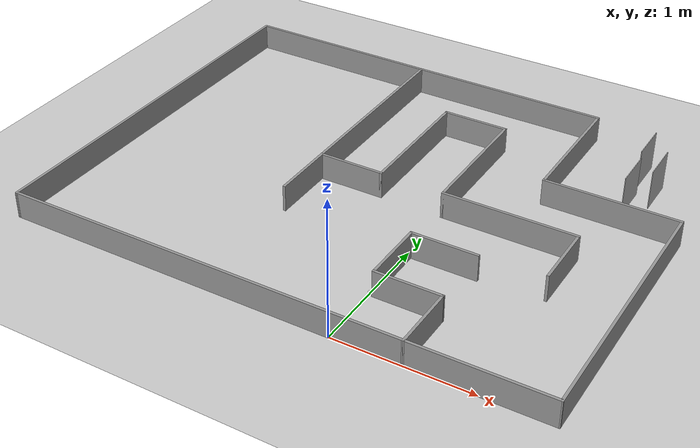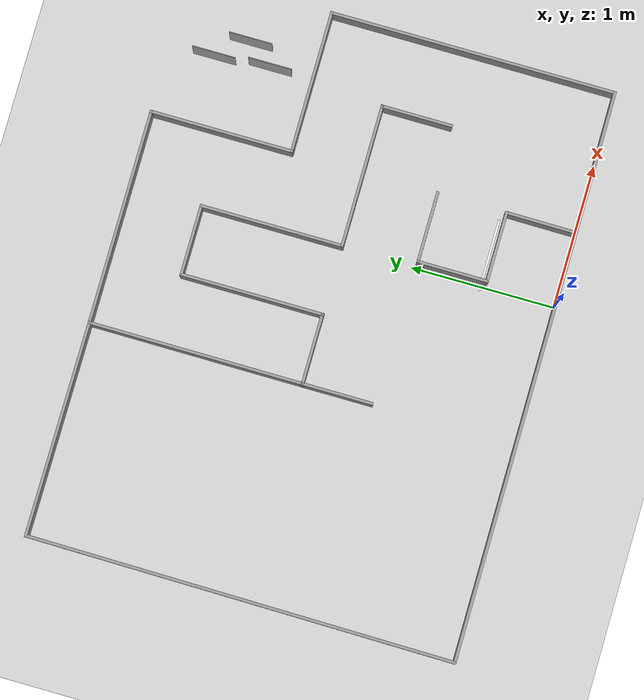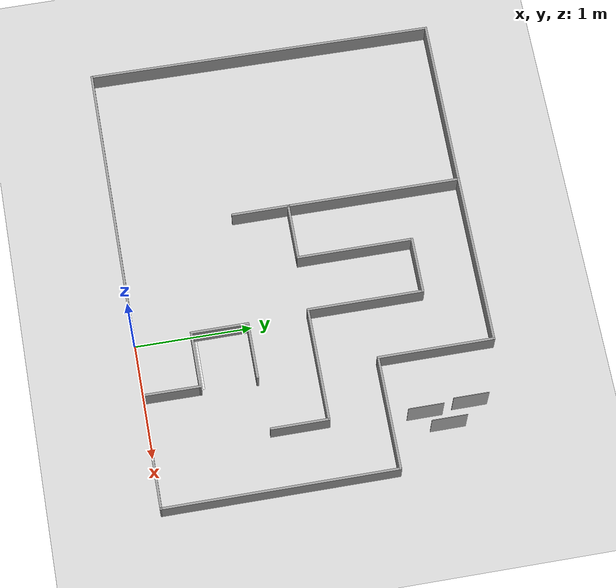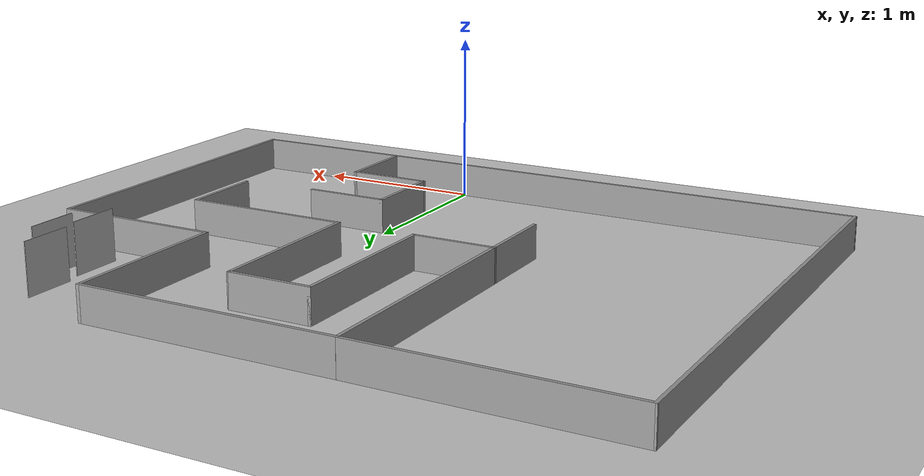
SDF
<sdf version="1.7">
 <world name="round2">
  <light name="sun" type="directional">
   <pose>0 0 10 0 -0 0</pose>
   <diffuse>0.8 0.8 0.8 1</diffuse>
   <specular>0.2 0.2 0.2 1</specular>
   <attenuation>
    <range>1000</range>
    <constant>0.9</constant>
    <linear>0.01</linear>
    <quadratic>0.001</quadratic>
   </attenuation>
   <direction>-0.5 0.1 -0.9</direction>
   <spot><inner_angle>0</inner_angle><outer_angle>0</outer_angle><falloff>0</falloff></spot>
  </light>
  <model name="ground_plane">
   <static>1</static>
   <link name="link">
    <collision name="collision">
     <geometry><plane><normal>0 0 1</normal><size>100 100</size></plane></geometry>
     <surface>
      <contact><collide_bitmask>65535</collide_bitmask></contact>
      <friction><ode><mu>100</mu><mu2>50</mu2></ode></friction>
     </surface>
    </collision>
    <visual name="visual">
     <cast_shadows>0</cast_shadows>
     <geometry><plane><normal>0 0 1</normal><size>100 100</size></plane></geometry>
     <material>
      <script><uri>file://media/materials/scripts/gazebo.material</uri><name>Gazebo/Grey</name></script>
     </material>
    </visual>
   </link>
  </model>
  <model name="round2_map">
   <pose>-0.490472 1.48465 0 0 -0 0</pose>
   <link name="Wall_0">
    <collision name="Wall_0_Collision">
     <geometry><box><size>1.5 0.02 0.2</size></box></geometry>
     <pose>0 0 0.1 0 -0 0</pose>
    </collision>
    <visual name="Wall_0_Visual">
     <pose>0 0 0.1 0 -0 0</pose>
     <geometry><box><size>1.5 0.02 0.2</size></box></geometry>
     <material>
      <script><uri>file://media/materials/scripts/gazebo.material</uri><name>Gazebo/Grey</name></script>
      <ambient>1 1 1 1</ambient>
     </material>
     <meta><layer>0</layer></meta>
    </visual>
    <pose>0.264528 1.47665 0 0 -0 0</pose>
   </link>
   <link name="Wall_11">
    <collision name="Wall_11_Collision">
     <geometry><box><size>0.503 0.02 0.2</size></box></geometry>
     <pose>0 0 0.1 0 -0 0</pose>
    </collision>
    <visual name="Wall_11_Visual">
     <pose>0 0 0.1 0 -0 0</pose>
     <geometry><box><size>0.503 0.02 0.2</size></box></geometry>
     <material>
      <script><uri>file://media/materials/scripts/gazebo.material</uri><name>Gazebo/Grey</name></script>
      <ambient>1 1 1 1</ambient>
     </material>
     <meta><layer>0</layer></meta>
    </visual>
    <pose>-0.236972 -0.003346 0 0 -0 0</pose>
   </link>
   <link name="Wall_13">
    <collision name="Wall_13_Collision">
     <geometry><box><size>1 0.02 0.2</size></box></geometry>
     <pose>0 0 0.1 0 -0 0</pose>
    </collision>
    <visual name="Wall_13_Visual">
     <pose>0 0 0.1 0 -0 0</pose>
     <geometry><box><size>1 0.02 0.2</size></box></geometry>
     <material>
      <script><uri>file://media/materials/scripts/gazebo.material</uri><name>Gazebo/Grey</name></script>
      <ambient>1 1 1 1</ambient>
     </material>
     <meta><layer>0</layer></meta>
    </visual>
    <pose>0.004528 0.486654 0 0 -0 1.5708</pose>
   </link>
   <link name="Wall_16">
    <collision name="Wall_16_Collision">
     <geometry><box><size>0.5 0.02 0.2</size></box></geometry>
     <pose>0 0 0.1 0 -0 0</pose>
    </collision>
    <visual name="Wall_16_Visual">
     <pose>0 0 0.1 0 -0 0</pose>
     <geometry><box><size>0.5 0.02 0.2</size></box></geometry>
     <material>
      <script><uri>file://media/materials/scripts/gazebo.material</uri><name>Gazebo/Grey</name></script>
      <ambient>1 1 1 1</ambient>
     </material>
     <meta><layer>0</layer></meta>
    </visual>
    <pose>0.244528 0.976654 0 0 -0 0</pose>
   </link>
   <link name="Wall_18">
    <collision name="Wall_18_Collision">
     <geometry><box><size>1 0.02 0.2</size></box></geometry>
     <pose>0 0 0.1 0 -0 0</pose>
    </collision>
    <visual name="Wall_18_Visual">
     <pose>0 0 0.1 0 -0 0</pose>
     <geometry><box><size>1 0.02 0.2</size></box></geometry>
     <material>
      <script><uri>file://media/materials/scripts/gazebo.material</uri><name>Gazebo/Grey</name></script>
      <ambient>1 1 1 1</ambient>
     </material>
     <meta><layer>0</layer></meta>
    </visual>
    <pose>0.484528 0.486654 0 0 -0 -1.5708</pose>
   </link>
   <link name="Wall_20">
    <collision name="Wall_20_Collision">
     <geometry><box><size>0.997 0.02 0.2</size></box></geometry>
     <pose>0 0 0.1 0 -0 0</pose>
    </collision>
    <visual name="Wall_20_Visual">
     <pose>0 0 0.1 0 -0 0</pose>
     <geometry><box><size>0.997 0.02 0.2</size></box></geometry>
     <material>
      <script><uri>file://media/materials/scripts/gazebo.material</uri><name>Gazebo/Grey</name></script>
      <ambient>1 1 1 1</ambient>
     </material>
     <meta><layer>0</layer></meta>
    </visual>
    <pose>1.49303 0.496654 0 0 -0 0</pose>
   </link>
   <link name="Wall_22">
    <collision name="Wall_22_Collision">
     <geometry><box><size>1.997 0.02 0.2</size></box></geometry>
     <pose>0 0 0.1 0 -0 0</pose>
    </collision>
    <visual name="Wall_22_Visual">
     <pose>0 0 0.1 0 -0 0</pose>
     <geometry><box><size>1.997 0.02 0.2</size></box></geometry>
     <material>
      <script><uri>file://media/materials/scripts/gazebo.material</uri><name>Gazebo/Grey</name></script>
      <ambient>1 1 1 1</ambient>
     </material>
     <meta><layer>0</layer></meta>
    </visual>
    <pose>1.98153 -0.491846 0 0 -0 -1.5708</pose>
   </link>
   <link name="Wall_24">
    <collision name="Wall_24_Collision">
     <geometry><box><size>1.003 0.02 0.2</size></box></geometry>
     <pose>0 0 0.1 0 -0 0</pose>
    </collision>
    <visual name="Wall_24_Visual">
     <pose>0 0 0.1 0 -0 0</pose>
     <geometry><box><size>1.003 0.02 0.2</size></box></geometry>
     <material>
      <script><uri>file://media/materials/scripts/gazebo.material</uri><name>Gazebo/Grey</name></script>
      <ambient>1 1 1 1</ambient>
     </material>
     <meta><layer>0</layer></meta>
    </visual>
    <pose>1.49003 -1.48185 0 0 -0 -3.13854</pose>
   </link>
   <link name="Wall_26">
    <collision name="Wall_26_Collision">
     <geometry><box><size>0.503009 0.02 0.2</size></box></geometry>
     <pose>0 0 0.1 0 -0 0</pose>
    </collision>
    <visual name="Wall_26_Visual">
     <pose>0 0 0.1 0 -0 0</pose>
     <geometry><box><size>0.503009 0.02 0.2</size></box></geometry>
     <material>
      <script><uri>file://media/materials/scripts/gazebo.material</uri><name>Gazebo/Grey</name></script>
      <ambient>1 1 1 1</ambient>
     </material>
     <meta><layer>0</layer></meta>
    </visual>
    <pose>1.00003 -1.24185 0 0 -0 1.56458</pose>
   </link>
   <link name="Wall_28">
    <collision name="Wall_28_Collision">
     <geometry><box><size>0.5 0.02 0.2</size></box></geometry>
     <pose>0 0 0.1 0 -0 0</pose>
    </collision>
    <visual name="Wall_28_Visual">
     <pose>0 0 0.1 0 -0 0</pose>
     <geometry><box><size>0.5 0.02 0.2</size></box></geometry>
     <material>
      <script><uri>file://media/materials/scripts/gazebo.material</uri><name>Gazebo/Grey</name></script>
      <ambient>1 1 1 1</ambient>
     </material>
     <meta><layer>0</layer></meta>
    </visual>
    <pose>0.761528 -1.00035 0 0 -0 -3.14159</pose>
   </link>
   <link name="Wall_30">
    <collision name="Wall_30_Collision">
     <geometry><box><size>0.5 0.02 0.2</size></box></geometry>
     <pose>0 0 0.1 0 -0 0</pose>
    </collision>
    <visual name="Wall_30_Visual">
     <pose>0 0 0.1 0 -0 0</pose>
     <geometry><box><size>0.5 0.02 0.2</size></box></geometry>
     <material>
      <script><uri>file://media/materials/scripts/gazebo.material</uri><name>Gazebo/Grey</name></script>
      <ambient>1 1 1 1</ambient>
     </material>
     <meta><layer>0</layer></meta>
    </visual>
    <pose>0.521528 -0.760346 0 0 -0 1.5708</pose>
   </link>
   <link name="Wall_32">
    <collision name="Wall_32_Collision">
     <geometry><box><size>1 0.02 0.2</size></box></geometry>
     <pose>0 0 0.1 0 -0 0</pose>
    </collision>
    <visual name="Wall_32_Visual">
     <pose>0 0 0.1 0 -0 0</pose>
     <geometry><box><size>1 0.02 0.2</size></box></geometry>
     <material>
      <script><uri>file://media/materials/scripts/gazebo.material</uri><name>Gazebo/Grey</name></script>
      <ambient>1 1 1 1</ambient>
     </material>
     <meta><layer>0</layer></meta>
    </visual>
    <pose>0.974528 -0.003346 0 0 -0 0</pose>
   </link>
   <link name="Wall_34">
    <collision name="Wall_34_Collision">
     <geometry><box><size>0.5 0.02 0.2</size></box></geometry>
     <pose>0 0 0.1 0 -0 0</pose>
    </collision>
    <visual name="Wall_34_Visual">
     <pose>0 0 0.1 0 -0 0</pose>
     <geometry><box><size>0.5 0.02 0.2</size></box></geometry>
     <material>
      <script><uri>file://media/materials/scripts/gazebo.material</uri><name>Gazebo/Grey</name></script>
      <ambient>1 1 1 1</ambient>
     </material>
     <meta><layer>0</layer></meta>
    </visual>
    <pose>1.46453 -0.243346 0 0 -0 -1.5708</pose>
   </link>
   <link name="Wall_36">
    <collision name="Wall_36_Collision">
     <geometry><box><size>0.5 0.02 0.2</size></box></geometry>
     <pose>0 0 0.1 0 -0 0</pose>
    </collision>
    <visual name="Wall_36_Visual">
     <pose>0 0 0.1 0 -0 0</pose>
     <geometry><box><size>0.5 0.02 0.2</size></box></geometry>
     <material>
      <script><uri>file://media/materials/scripts/gazebo.material</uri><name>Gazebo/Grey</name></script>
      <ambient>1 1 1 1</ambient>
     </material>
     <meta><layer>0</layer></meta>
    </visual>
    <pose>0.761528 -0.520346 0 0 -0 0</pose>
   </link>
   <link name="Wall_38">
    <collision name="Wall_38_Collision">
     <geometry><box><size>1.5 0.02 0.2</size></box></geometry>
     <pose>0 0 0.1 0 -0 0</pose>
    </collision>
    <visual name="Wall_38_Visual">
     <pose>0 0 0.1 0 -0 0</pose>
     <geometry><box><size>1.5 0.02 0.2</size></box></geometry>
     <material>
      <script><uri>file://media/materials/scripts/gazebo.material</uri><name>Gazebo/Grey</name></script>
      <ambient>1 1 1 1</ambient>
     </material>
     <meta><layer>0</layer></meta>
    </visual>
    <pose>-1.21546 1.48 0 0 -0 3.13707</pose>
   </link>
   <link name="Wall_43">
    <collision name="Wall_43_Collision">
     <geometry><box><size>3 0.02 0.2</size></box></geometry>
     <pose>0 0 0.1 0 -0 0</pose>
    </collision>
    <visual name="Wall_43_Visual">
     <pose>0 0 0.1 0 -0 0</pose>
     <geometry><box><size>3 0.02 0.2</size></box></geometry>
     <material>
      <script><uri>file://media/materials/scripts/gazebo.material</uri><name>Gazebo/Grey</name></script>
      <ambient>1 1 1 1</ambient>
     </material>
     <meta><layer>0</layer></meta>
    </visual>
    <pose>-0.491472 -1.48335 0 0 -0 3.14159</pose>
   </link>
   <link name="Wall_45">
    <collision name="Wall_45_Collision">
     <geometry><box><size>2.98681 0.02 0.2</size></box></geometry>
     <pose>0 0 0.1 0 -0 0</pose>
    </collision>
    <visual name="Wall_45_Visual">
     <pose>0 0 0.1 0 -0 0</pose>
     <geometry><box><size>2.98681 0.02 0.2</size></box></geometry>
     <material>
      <script><uri>file://media/materials/scripts/gazebo.material</uri><name>Gazebo/Grey</name></script>
      <ambient>1 1 1 1</ambient>
     </material>
     <meta><layer>0</layer></meta>
    </visual>
    <pose>-1.96846 0 0 0 -0 -1.57957</pose>
   </link>
   <link name="Wall_47">
    <collision name="Wall_47_Collision">
     <geometry><box><size>0.5 0.02 0.2</size></box></geometry>
     <pose>0 0 0.1 0 -0 0</pose>
    </collision>
    <visual name="Wall_47_Visual">
     <pose>0 0 0.1 0 -0 0</pose>
     <geometry><box><size>0.5 0.02 0.2</size></box></geometry>
     <material>
      <script><uri>file://media/materials/scripts/gazebo.material</uri><name>Gazebo/Grey</name></script>
      <ambient>1 1 1 1</ambient>
     </material>
     <meta><layer>0</layer></meta>
    </visual>
    <pose>-0.478472 -0.243346 0 0 -0 -1.5708</pose>
   </link>
   <link name="Wall_5">
    <collision name="Wall_5_Collision">
     <geometry><box><size>1.5 0.02 0.2</size></box></geometry>
     <pose>0 0 0.1 0 -0 0</pose>
    </collision>
    <visual name="Wall_5_Visual">
     <pose>0 0 0.1 0 -0 0</pose>
     <geometry><box><size>1.5 0.02 0.2</size></box></geometry>
     <material>
      <script><uri>file://media/materials/scripts/gazebo.material</uri><name>Gazebo/Grey</name></script>
      <ambient>1 1 1 1</ambient>
     </material>
     <meta><layer>0</layer></meta>
    </visual>
    <pose>-0.476972 0.736654 0 0 -0 -1.57282</pose>
   </link>
   <link name="Wall_9">
    <collision name="Wall_9_Collision">
     <geometry><box><size>1 0.02 0.2</size></box></geometry>
     <pose>0 0 0.1 0 -0 0</pose>
    </collision>
    <visual name="Wall_9_Visual">
     <pose>0 0 0.1 0 -0 0</pose>
     <geometry><box><size>1 0.02 0.2</size></box></geometry>
     <material>
      <script><uri>file://media/materials/scripts/gazebo.material</uri><name>Gazebo/Grey</name></script>
      <ambient>1 1 1 1</ambient>
     </material>
     <meta><layer>0</layer></meta>
    </visual>
    <pose>1.00453 0.986654 0 0 -0 -1.5708</pose>
   </link>
   <static>1</static>
  </model>
  <model name="qr_board_s">
   <static>1</static>
   <link name="link">
    <pose>0 0 0.15 1.5708 -0 0</pose>
    <visual name="visual">
     <geometry><box><size>0.3 0.3 0.005</size></box></geometry>
     <material>
      <script><uri>../models/qr_board_s/materials/scripts/food.material</uri><name>food</name></script>
     </material>
    </visual>
    <collision name="collision"><geometry><box><size>0.3 0.3 0.005</size></box></geometry></collision>
   </link>
   <pose>1.16159 2.45094 -0 0 -0 -1.57</pose>
  </model>
  <model name="qr_board_goods">
   <static>1</static>
   <link name="link">
    <pose>0 0 0.15 1.5708 -0 0</pose>
    <visual name="visual">
     <geometry><box><size>0.3 0.3 0.005</size></box></geometry>
     <material>
      <script><uri>../models/qr_board_goods/materials/scripts/goods.material</uri><name>goods</name></script>
     </material>
    </visual>
    <collision name="collision"><geometry><box><size>0.3 0.3 0.005</size></box></geometry></collision>
   </link>
   <pose>1.03195 2.27983 -0 0 -0 -1.57</pose>
  </model>
  <model name="qr_board_electronic">
   <static>1</static>
   <link name="link">
    <pose>0 0 0.15 1.5708 -0 0</pose>
    <visual name="visual">
     <geometry><box><size>0.3 0.3 0.005</size></box></geometry>
     <material>
      <script>
       <uri>../models/qr_board_electronic/materials/scripts/electronic.material</uri>
       <name>electronic</name>
      </script>
     </material>
    </visual>
    <collision name="collision"><geometry><box><size>0.3 0.3 0.005</size></box></geometry></collision>
   </link>
   <pose>1.00327 2.66362 -0 0 -0 -1.57</pose>
  </model>
  <gravity>0 0 -9.8</gravity>
  <magnetic_field>6e-06 2.3e-05 -4.2e-05</magnetic_field>
  <atmosphere type="adiabatic"/>
  <physics type="ode">
   <max_step_size>0.001</max_step_size>
   <real_time_factor>1</real_time_factor>
   <real_time_update_rate>1000</real_time_update_rate>
  </physics>
  <scene><ambient>0.4 0.4 0.4 1</ambient><background>0.7 0.7 0.7 1</background><shadows>1</shadows></scene>
  <spherical_coordinates>
   <surface_model>EARTH_WGS84</surface_model>
   <latitude_deg>0</latitude_deg>
   <longitude_deg>0</longitude_deg>
   <elevation>0</elevation>
   <heading_deg>0</heading_deg>
  </spherical_coordinates>
  <model name="white_line">
   <static>1</static>
   <link name="link">
    <collision name="collision">
     <geometry><box><size>0.5 0.015 0.0001</size><normal>0 0 1</normal></box></geometry>
     <surface><friction><ode><mu>100</mu><mu2>50</mu2></ode></friction></surface>
    </collision>
    <visual name="visual">
     <geometry><box><size>0.5 0.015 0.0001</size><normal>0 0 1</normal></box></geometry>
     <material>
      <script>
       <uri>model://white_line/materials/scripts</uri>
       <uri>model://white_line/materials/textures</uri>
       <name>white_line</name>
      </script>
     </material>
    </visual>
   </link>
   <pose>0.225552 0.515139 0 0 -0 0</pose>
  </model>
 </world>
</sdf>
